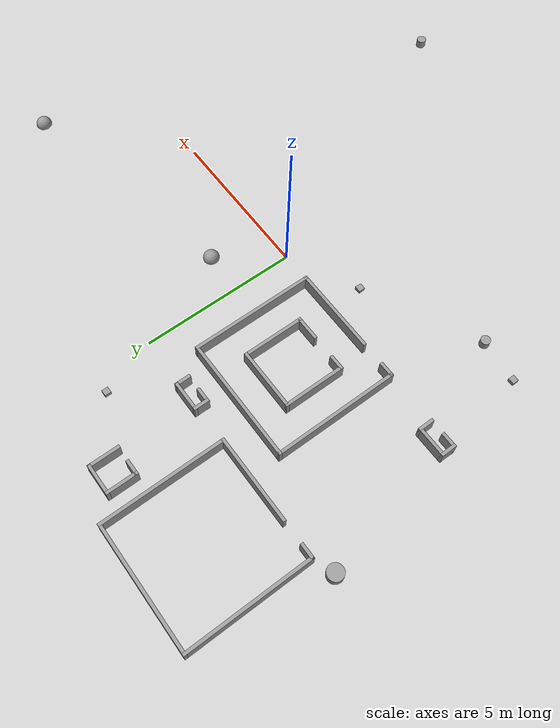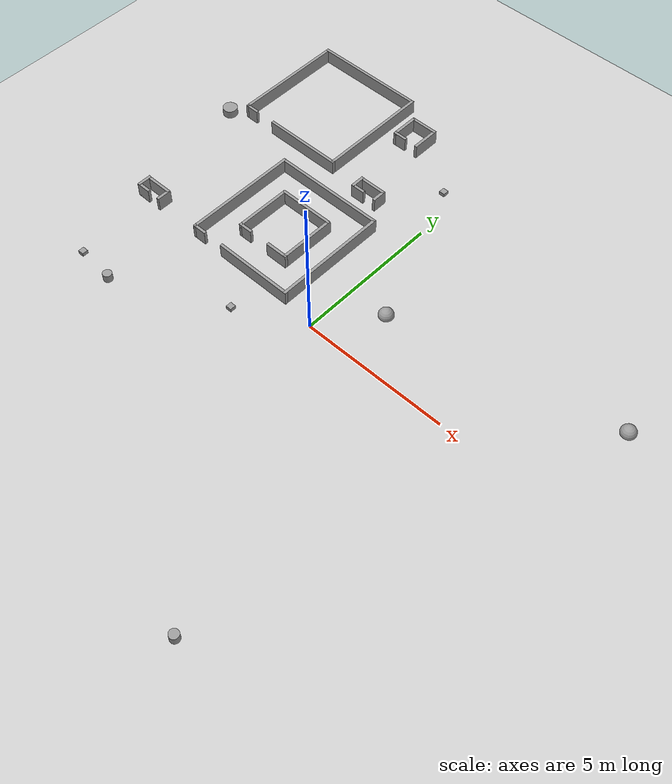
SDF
<sdf version="1.6">
 <world name="default">
  <model name="ground_plane">
   <static>1</static>
   <link name="link">
    <collision name="collision">
     <geometry><plane><normal>0 0 1</normal><size>20 20</size></plane></geometry>
     <surface>
      <contact><collide_bitmask>65535</collide_bitmask></contact>
      <friction><ode><mu>100</mu><mu2>50</mu2></ode></friction>
     </surface>
    </collision>
    <visual name="visual">
     <cast_shadows>0</cast_shadows>
     <geometry><plane><normal>0 0 1</normal><size>20 20</size></plane></geometry>
     <material>
      <script><uri>file://media/materials/scripts/gazebo.material</uri><name>Gazebo/Grey</name></script>
     </material>
    </visual>
   </link>
  </model>
  <model name="shape6">
   <pose>-3.1 2.1 0 0 -0 0</pose>
   <link name="Wall_27">
    <collision name="Wall_27_Collision">
     <geometry><box><size>4 0.1 0.5</size></box></geometry>
     <pose>0 0 0.25 0 -0 0</pose>
    </collision>
    <visual name="Wall_27_Visual">
     <pose>0 0 0.25 0 -0 0</pose>
     <geometry><box><size>4 0.1 0.5</size></box></geometry>
     <material>
      <script><uri>file://media/materials/scripts/gazebo.material</uri><name>Gazebo/Grey</name></script>
      <ambient>1 1 1 1</ambient>
     </material>
     <meta><layer>0</layer></meta>
    </visual>
    <pose>0 1.95 0 0 -0 0</pose>
   </link>
   <link name="Wall_28">
    <collision name="Wall_28_Collision">
     <geometry><box><size>4 0.1 0.5</size></box></geometry>
     <pose>0 0 0.25 0 -0 0</pose>
    </collision>
    <visual name="Wall_28_Visual">
     <pose>0 0 0.25 0 -0 0</pose>
     <geometry><box><size>4 0.1 0.5</size></box></geometry>
     <material>
      <script><uri>file://media/materials/scripts/gazebo.material</uri><name>Gazebo/Grey</name></script>
      <ambient>1 1 1 1</ambient>
     </material>
     <meta><layer>0</layer></meta>
    </visual>
    <pose>1.95 -0 0 0 -0 -1.5708</pose>
   </link>
   <link name="Wall_29">
    <collision name="Wall_29_Collision">
     <geometry><box><size>2.8 0.1 0.5</size></box></geometry>
     <pose>0 0 0.25 0 -0 0</pose>
    </collision>
    <visual name="Wall_29_Visual">
     <pose>0 0 0.25 0 -0 0</pose>
     <geometry><box><size>2.8 0.1 0.5</size></box></geometry>
     <material>
      <script><uri>file://media/materials/scripts/gazebo.material</uri><name>Gazebo/Grey</name></script>
      <ambient>1 1 1 1</ambient>
     </material>
     <meta><layer>0</layer></meta>
    </visual>
    <pose>0.6 -1.95 0 0 -0 3.14159</pose>
   </link>
   <link name="Wall_31">
    <collision name="Wall_31_Collision">
     <geometry><box><size>4 0.1 0.5</size></box></geometry>
     <pose>0 0 0.25 0 -0 0</pose>
    </collision>
    <visual name="Wall_31_Visual">
     <pose>0 0 0.25 0 -0 0</pose>
     <geometry><box><size>4 0.1 0.5</size></box></geometry>
     <material>
      <script><uri>file://media/materials/scripts/gazebo.material</uri><name>Gazebo/Grey</name></script>
      <ambient>1 1 1 1</ambient>
     </material>
     <meta><layer>0</layer></meta>
    </visual>
    <pose>-1.95 -0 0 0 -0 -1.5708</pose>
   </link>
   <link name="Wall_32">
    <collision name="Wall_32_Collision">
     <geometry><box><size>0.5 0.1 0.5</size></box></geometry>
     <pose>0 0 0.25 0 -0 0</pose>
    </collision>
    <visual name="Wall_32_Visual">
     <pose>0 0 0.25 0 -0 0</pose>
     <geometry><box><size>0.5 0.1 0.5</size></box></geometry>
     <material>
      <script><uri>file://media/materials/scripts/gazebo.material</uri><name>Gazebo/Grey</name></script>
      <ambient>1 1 1 1</ambient>
     </material>
     <meta><layer>0</layer></meta>
    </visual>
    <pose>-1.75 -1.95 0 0 -0 0</pose>
   </link>
   <static>1</static>
  </model>
  <model name="shape5">
   <pose>-3.1 2.1 0 0 -0 0</pose>
   <link name="Wall_20">
    <collision name="Wall_20_Collision">
     <geometry><box><size>2 0.1 0.5</size></box></geometry>
     <pose>0 0 0.25 0 -0 0</pose>
    </collision>
    <visual name="Wall_20_Visual">
     <pose>0 0 0.25 0 -0 0</pose>
     <geometry><box><size>2 0.1 0.5</size></box></geometry>
     <material>
      <script><uri>file://media/materials/scripts/gazebo.material</uri><name>Gazebo/Grey</name></script>
      <ambient>1 1 1 1</ambient>
     </material>
     <meta><layer>0</layer></meta>
    </visual>
    <pose>-0 0.95 0 0 -0 0</pose>
   </link>
   <link name="Wall_21">
    <collision name="Wall_21_Collision">
     <geometry><box><size>2 0.1 0.5</size></box></geometry>
     <pose>0 0 0.25 0 -0 0</pose>
    </collision>
    <visual name="Wall_21_Visual">
     <pose>0 0 0.25 0 -0 0</pose>
     <geometry><box><size>2 0.1 0.5</size></box></geometry>
     <material>
      <script><uri>file://media/materials/scripts/gazebo.material</uri><name>Gazebo/Grey</name></script>
      <ambient>1 1 1 1</ambient>
     </material>
     <meta><layer>0</layer></meta>
    </visual>
    <pose>0.95 0 0 0 -0 -1.5708</pose>
   </link>
   <link name="Wall_22">
    <collision name="Wall_22_Collision">
     <geometry><box><size>0.8 0.1 0.5</size></box></geometry>
     <pose>0 0 0.25 0 -0 0</pose>
    </collision>
    <visual name="Wall_22_Visual">
     <pose>0 0 0.25 0 -0 0</pose>
     <geometry><box><size>0.8 0.1 0.5</size></box></geometry>
     <material>
      <script><uri>file://media/materials/scripts/gazebo.material</uri><name>Gazebo/Grey</name></script>
      <ambient>1 1 1 1</ambient>
     </material>
     <meta><layer>0</layer></meta>
    </visual>
    <pose>0.6 -0.95 0 0 -0 3.14159</pose>
   </link>
   <link name="Wall_24">
    <collision name="Wall_24_Collision">
     <geometry><box><size>2 0.1 0.5</size></box></geometry>
     <pose>0 0 0.25 0 -0 0</pose>
    </collision>
    <visual name="Wall_24_Visual">
     <pose>0 0 0.25 0 -0 0</pose>
     <geometry><box><size>2 0.1 0.5</size></box></geometry>
     <material>
      <script><uri>file://media/materials/scripts/gazebo.material</uri><name>Gazebo/Grey</name></script>
      <ambient>1 1 1 1</ambient>
     </material>
     <meta><layer>0</layer></meta>
    </visual>
    <pose>-0.95 0 0 0 -0 -1.5708</pose>
   </link>
   <link name="Wall_25">
    <collision name="Wall_25_Collision">
     <geometry><box><size>0.5 0.1 0.5</size></box></geometry>
     <pose>0 0 0.25 0 -0 0</pose>
    </collision>
    <visual name="Wall_25_Visual">
     <pose>0 0 0.25 0 -0 0</pose>
     <geometry><box><size>0.5 0.1 0.5</size></box></geometry>
     <material>
      <script><uri>file://media/materials/scripts/gazebo.material</uri><name>Gazebo/Grey</name></script>
      <ambient>1 1 1 1</ambient>
     </material>
     <meta><layer>0</layer></meta>
    </visual>
    <pose>-0.75 -0.95 0 0 -0 0</pose>
   </link>
   <static>1</static>
  </model>
  <model name="shape0">
   <pose>-2.2 4.95 0 0 -0 0</pose>
   <link name="Wall_0">
    <pose>0 0.2 0 0 -0 0</pose>
    <inertial>
     <mass>1</mass>
     <inertia><ixx>1</ixx><ixy>0</ixy><ixz>0</ixz><iyy>1</iyy><iyz>0</iyz><izz>1</izz></inertia>
    </inertial>
    <visual name="Wall_0_Visual">
     <pose>0 0 0.25 0 -0 0</pose>
     <geometry><box><size>1 0.1 0.5</size></box></geometry>
     <material>
      <script><uri>file://media/materials/scripts/gazebo.material</uri><name>Gazebo/Grey</name></script>
      <ambient>1 1 1 1</ambient>
      <shader type="vertex"><normal_map>__default__</normal_map></shader>
      <diffuse>0.7 0.7 0.7 1</diffuse>
      <specular>0.01 0.01 0.01 1</specular>
      <emissive>0 0 0 1</emissive>
     </material>
     <meta><layer>0</layer></meta>
    </visual>
    <collision name="Wall_0_Collision">
     <pose>0 0 0.25 0 -0 0</pose>
     <geometry><box><size>1 0.1 0.5</size></box></geometry>
     <surface>
      <friction>
       <ode><mu>1</mu><mu2>1</mu2><fdir1>0 0 0</fdir1><slip1>0</slip1><slip2>0</slip2></ode>
       <torsional>
        <coefficient>1</coefficient>
        <patch_radius>0</patch_radius>
        <surface_radius>0</surface_radius>
        <use_patch_radius>1</use_patch_radius>
        <ode><slip>0</slip></ode>
       </torsional>
      </friction>
      <bounce><restitution_coefficient>0</restitution_coefficient><threshold>1e+06</threshold></bounce>
      <contact>
       <collide_without_contact>0</collide_without_contact>
       <collide_without_contact_bitmask>1</collide_without_contact_bitmask>
       <collide_bitmask>1</collide_bitmask>
       <ode>
        <soft_cfm>0</soft_cfm>
        <soft_erp>0.2</soft_erp>
        <kp>1e+13</kp>
        <kd>1</kd>
        <max_vel>0.01</max_vel>
        <min_depth>0</min_depth>
       </ode>
       <bullet>
        <split_impulse>1</split_impulse>
        <split_impulse_penetration_threshold>-0.01</split_impulse_penetration_threshold>
        <soft_cfm>0</soft_cfm>
        <soft_erp>0.2</soft_erp>
        <kp>1e+13</kp>
        <kd>1</kd>
       </bullet>
      </contact>
     </surface>
    </collision>
   </link>
   <link name="Wall_2">
    <pose>-0.45 0 0.01 0 0 -1.5708</pose>
    <inertial>
     <mass>1</mass>
     <inertia><ixx>1</ixx><ixy>0</ixy><ixz>0</ixz><iyy>1</iyy><iyz>0</iyz><izz>1</izz></inertia>
    </inertial>
    <visual name="Wall_2_Visual">
     <pose>0 0 0.25 0 -0 0</pose>
     <geometry><box><size>0.5 0.1 0.5</size></box></geometry>
     <material>
      <script><uri>file://media/materials/scripts/gazebo.material</uri><name>Gazebo/Grey</name></script>
      <ambient>1 1 1 1</ambient>
      <shader type="vertex"><normal_map>__default__</normal_map></shader>
      <diffuse>0.7 0.7 0.7 1</diffuse>
      <specular>0.01 0.01 0.01 1</specular>
      <emissive>0 0 0 1</emissive>
     </material>
     <meta><layer>0</layer></meta>
    </visual>
    <collision name="Wall_2_Collision">
     <pose>0 0 0.25 0 -0 0</pose>
     <geometry><box><size>0.5 0.1 0.5</size></box></geometry>
     <surface>
      <friction>
       <ode><mu>1</mu><mu2>1</mu2><fdir1>0 0 0</fdir1><slip1>0</slip1><slip2>0</slip2></ode>
       <torsional>
        <coefficient>1</coefficient>
        <patch_radius>0</patch_radius>
        <surface_radius>0</surface_radius>
        <use_patch_radius>1</use_patch_radius>
        <ode><slip>0</slip></ode>
       </torsional>
      </friction>
      <bounce><restitution_coefficient>0</restitution_coefficient><threshold>1e+06</threshold></bounce>
      <contact>
       <collide_without_contact>0</collide_without_contact>
       <collide_without_contact_bitmask>1</collide_without_contact_bitmask>
       <collide_bitmask>1</collide_bitmask>
       <ode>
        <soft_cfm>0</soft_cfm>
        <soft_erp>0.2</soft_erp>
        <kp>1e+13</kp>
        <kd>1</kd>
        <max_vel>0.01</max_vel>
        <min_depth>0</min_depth>
       </ode>
       <bullet>
        <split_impulse>1</split_impulse>
        <split_impulse_penetration_threshold>-0.01</split_impulse_penetration_threshold>
        <soft_cfm>0</soft_cfm>
        <soft_erp>0.2</soft_erp>
        <kp>1e+13</kp>
        <kd>1</kd>
       </bullet>
      </contact>
     </surface>
    </collision>
   </link>
   <link name="Wall_4">
    <pose>0.45 0 0 0 0 -1.5708</pose>
    <inertial>
     <mass>1</mass>
     <inertia><ixx>1</ixx><ixy>0</ixy><ixz>0</ixz><iyy>1</iyy><iyz>0</iyz><izz>1</izz></inertia>
    </inertial>
    <visual name="Wall_4_Visual">
     <pose>0 0 0.25 0 -0 0</pose>
     <geometry><box><size>0.5 0.1 0.5</size></box></geometry>
     <material>
      <script><uri>file://media/materials/scripts/gazebo.material</uri><name>Gazebo/Grey</name></script>
      <ambient>1 1 1 1</ambient>
      <shader type="vertex"><normal_map>__default__</normal_map></shader>
      <diffuse>0.7 0.7 0.7 1</diffuse>
      <specular>0.01 0.01 0.01 1</specular>
      <emissive>0 0 0 1</emissive>
     </material>
     <meta><layer>0</layer></meta>
    </visual>
    <collision name="Wall_4_Collision">
     <pose>0 0 0.25 0 -0 0</pose>
     <geometry><box><size>0.5 0.1 0.5</size></box></geometry>
     <surface>
      <friction>
       <ode><mu>1</mu><mu2>1</mu2><fdir1>0 0 0</fdir1><slip1>0</slip1><slip2>0</slip2></ode>
       <torsional>
        <coefficient>1</coefficient>
        <patch_radius>0</patch_radius>
        <surface_radius>0</surface_radius>
        <use_patch_radius>1</use_patch_radius>
        <ode><slip>0</slip></ode>
       </torsional>
      </friction>
      <bounce><restitution_coefficient>0</restitution_coefficient><threshold>1e+06</threshold></bounce>
      <contact>
       <collide_without_contact>0</collide_without_contact>
       <collide_without_contact_bitmask>1</collide_without_contact_bitmask>
       <collide_bitmask>1</collide_bitmask>
       <ode>
        <soft_cfm>0</soft_cfm>
        <soft_erp>0.2</soft_erp>
        <kp>1e+13</kp>
        <kd>1</kd>
        <max_vel>0.01</max_vel>
        <min_depth>0</min_depth>
       </ode>
       <bullet>
        <split_impulse>1</split_impulse>
        <split_impulse_penetration_threshold>-0.01</split_impulse_penetration_threshold>
        <soft_cfm>0</soft_cfm>
        <soft_erp>0.2</soft_erp>
        <kp>1e+13</kp>
        <kd>1</kd>
       </bullet>
      </contact>
     </surface>
    </collision>
   </link>
   <link name="Wall_7">
    <pose>-0.25 -0.2 0 0 -0 0</pose>
    <inertial>
     <mass>1</mass>
     <inertia><ixx>1</ixx><ixy>0</ixy><ixz>0</ixz><iyy>1</iyy><iyz>0</iyz><izz>1</izz></inertia>
    </inertial>
    <visual name="Wall_7_Visual">
     <pose>0 0 0.25 0 -0 0</pose>
     <geometry><box><size>0.5 0.1 0.5</size></box></geometry>
     <material>
      <script><uri>file://media/materials/scripts/gazebo.material</uri><name>Gazebo/Grey</name></script>
      <ambient>1 1 1 1</ambient>
      <shader type="vertex"><normal_map>__default__</normal_map></shader>
      <diffuse>0.7 0.7 0.7 1</diffuse>
      <specular>0.01 0.01 0.01 1</specular>
      <emissive>0 0 0 1</emissive>
     </material>
     <meta><layer>0</layer></meta>
    </visual>
    <collision name="Wall_7_Collision">
     <pose>0 0 0.25 0 -0 0</pose>
     <geometry><box><size>0.5 0.1 0.5</size></box></geometry>
     <surface>
      <friction>
       <ode><mu>1</mu><mu2>1</mu2><fdir1>0 0 0</fdir1><slip1>0</slip1><slip2>0</slip2></ode>
       <torsional>
        <coefficient>1</coefficient>
        <patch_radius>0</patch_radius>
        <surface_radius>0</surface_radius>
        <use_patch_radius>1</use_patch_radius>
        <ode><slip>0</slip></ode>
       </torsional>
      </friction>
      <bounce><restitution_coefficient>0</restitution_coefficient><threshold>1e+06</threshold></bounce>
      <contact>
       <collide_without_contact>0</collide_without_contact>
       <collide_without_contact_bitmask>1</collide_without_contact_bitmask>
       <collide_bitmask>1</collide_bitmask>
       <ode>
        <soft_cfm>0</soft_cfm>
        <soft_erp>0.2</soft_erp>
        <kp>1e+13</kp>
        <kd>1</kd>
        <max_vel>0.01</max_vel>
        <min_depth>0</min_depth>
       </ode>
       <bullet>
        <split_impulse>1</split_impulse>
        <split_impulse_penetration_threshold>-0.01</split_impulse_penetration_threshold>
        <soft_cfm>0</soft_cfm>
        <soft_erp>0.2</soft_erp>
        <kp>1e+13</kp>
        <kd>1</kd>
       </bullet>
      </contact>
     </surface>
    </collision>
   </link>
   <static>1</static>
  </model>
  <model name="shape6">
   <pose>-5.8 7 0 0 -0 0</pose>
   <link name="Wall_27">
    <collision name="Wall_27_Collision">
     <geometry><box><size>4 0.1 0.5</size></box></geometry>
     <pose>0 0 0.25 0 -0 0</pose>
    </collision>
    <visual name="Wall_27_Visual">
     <pose>0 0 0.25 0 -0 0</pose>
     <geometry><box><size>4 0.1 0.5</size></box></geometry>
     <material>
      <script><uri>file://media/materials/scripts/gazebo.material</uri><name>Gazebo/Grey</name></script>
      <ambient>1 1 1 1</ambient>
     </material>
     <meta><layer>0</layer></meta>
    </visual>
    <pose>0 1.95 0 0 -0 0</pose>
   </link>
   <link name="Wall_28">
    <collision name="Wall_28_Collision">
     <geometry><box><size>4 0.1 0.5</size></box></geometry>
     <pose>0 0 0.25 0 -0 0</pose>
    </collision>
    <visual name="Wall_28_Visual">
     <pose>0 0 0.25 0 -0 0</pose>
     <geometry><box><size>4 0.1 0.5</size></box></geometry>
     <material>
      <script><uri>file://media/materials/scripts/gazebo.material</uri><name>Gazebo/Grey</name></script>
      <ambient>1 1 1 1</ambient>
     </material>
     <meta><layer>0</layer></meta>
    </visual>
    <pose>1.95 -0 0 0 -0 -1.5708</pose>
   </link>
   <link name="Wall_29">
    <collision name="Wall_29_Collision">
     <geometry><box><size>2.8 0.1 0.5</size></box></geometry>
     <pose>0 0 0.25 0 -0 0</pose>
    </collision>
    <visual name="Wall_29_Visual">
     <pose>0 0 0.25 0 -0 0</pose>
     <geometry><box><size>2.8 0.1 0.5</size></box></geometry>
     <material>
      <script><uri>file://media/materials/scripts/gazebo.material</uri><name>Gazebo/Grey</name></script>
      <ambient>1 1 1 1</ambient>
     </material>
     <meta><layer>0</layer></meta>
    </visual>
    <pose>0.6 -1.95 0 0 -0 3.14159</pose>
   </link>
   <link name="Wall_31">
    <collision name="Wall_31_Collision">
     <geometry><box><size>4 0.1 0.5</size></box></geometry>
     <pose>0 0 0.25 0 -0 0</pose>
    </collision>
    <visual name="Wall_31_Visual">
     <pose>0 0 0.25 0 -0 0</pose>
     <geometry><box><size>4 0.1 0.5</size></box></geometry>
     <material>
      <script><uri>file://media/materials/scripts/gazebo.material</uri><name>Gazebo/Grey</name></script>
      <ambient>1 1 1 1</ambient>
     </material>
     <meta><layer>0</layer></meta>
    </visual>
    <pose>-1.95 -0 0 0 -0 -1.5708</pose>
   </link>
   <link name="Wall_32">
    <collision name="Wall_32_Collision">
     <geometry><box><size>0.5 0.1 0.5</size></box></geometry>
     <pose>0 0 0.25 0 -0 0</pose>
    </collision>
    <visual name="Wall_32_Visual">
     <pose>0 0 0.25 0 -0 0</pose>
     <geometry><box><size>0.5 0.1 0.5</size></box></geometry>
     <material>
      <script><uri>file://media/materials/scripts/gazebo.material</uri><name>Gazebo/Grey</name></script>
      <ambient>1 1 1 1</ambient>
     </material>
     <meta><layer>0</layer></meta>
    </visual>
    <pose>-1.75 -1.95 0 0 -0 0</pose>
   </link>
   <static>1</static>
  </model>
  <model name="shape0">
   <pose>-7.2 0.35 0 0 -0 0</pose>
   <link name="Wall_0">
    <pose>0 0.2 0 0 -0 0</pose>
    <inertial>
     <mass>1</mass>
     <inertia><ixx>1</ixx><ixy>0</ixy><ixz>0</ixz><iyy>1</iyy><iyz>0</iyz><izz>1</izz></inertia>
    </inertial>
    <visual name="Wall_0_Visual">
     <pose>0 0 0.25 0 -0 0</pose>
     <geometry><box><size>1 0.1 0.5</size></box></geometry>
     <material>
      <script><uri>file://media/materials/scripts/gazebo.material</uri><name>Gazebo/Grey</name></script>
      <ambient>1 1 1 1</ambient>
      <shader type="vertex"><normal_map>__default__</normal_map></shader>
      <diffuse>0.7 0.7 0.7 1</diffuse>
      <specular>0.01 0.01 0.01 1</specular>
      <emissive>0 0 0 1</emissive>
     </material>
     <meta><layer>0</layer></meta>
    </visual>
    <collision name="Wall_0_Collision">
     <pose>0 0 0.25 0 -0 0</pose>
     <geometry><box><size>1 0.1 0.5</size></box></geometry>
     <surface>
      <friction>
       <ode><mu>1</mu><mu2>1</mu2><fdir1>0 0 0</fdir1><slip1>0</slip1><slip2>0</slip2></ode>
       <torsional>
        <coefficient>1</coefficient>
        <patch_radius>0</patch_radius>
        <surface_radius>0</surface_radius>
        <use_patch_radius>1</use_patch_radius>
        <ode><slip>0</slip></ode>
       </torsional>
      </friction>
      <bounce><restitution_coefficient>0</restitution_coefficient><threshold>1e+06</threshold></bounce>
      <contact>
       <collide_without_contact>0</collide_without_contact>
       <collide_without_contact_bitmask>1</collide_without_contact_bitmask>
       <collide_bitmask>1</collide_bitmask>
       <ode>
        <soft_cfm>0</soft_cfm>
        <soft_erp>0.2</soft_erp>
        <kp>1e+13</kp>
        <kd>1</kd>
        <max_vel>0.01</max_vel>
        <min_depth>0</min_depth>
       </ode>
       <bullet>
        <split_impulse>1</split_impulse>
        <split_impulse_penetration_threshold>-0.01</split_impulse_penetration_threshold>
        <soft_cfm>0</soft_cfm>
        <soft_erp>0.2</soft_erp>
        <kp>1e+13</kp>
        <kd>1</kd>
       </bullet>
      </contact>
     </surface>
    </collision>
   </link>
   <link name="Wall_2">
    <pose>-0.45 0 0.01 0 0 -1.5708</pose>
    <inertial>
     <mass>1</mass>
     <inertia><ixx>1</ixx><ixy>0</ixy><ixz>0</ixz><iyy>1</iyy><iyz>0</iyz><izz>1</izz></inertia>
    </inertial>
    <visual name="Wall_2_Visual">
     <pose>0 0 0.25 0 -0 0</pose>
     <geometry><box><size>0.5 0.1 0.5</size></box></geometry>
     <material>
      <script><uri>file://media/materials/scripts/gazebo.material</uri><name>Gazebo/Grey</name></script>
      <ambient>1 1 1 1</ambient>
      <shader type="vertex"><normal_map>__default__</normal_map></shader>
      <diffuse>0.7 0.7 0.7 1</diffuse>
      <specular>0.01 0.01 0.01 1</specular>
      <emissive>0 0 0 1</emissive>
     </material>
     <meta><layer>0</layer></meta>
    </visual>
    <collision name="Wall_2_Collision">
     <pose>0 0 0.25 0 -0 0</pose>
     <geometry><box><size>0.5 0.1 0.5</size></box></geometry>
     <surface>
      <friction>
       <ode><mu>1</mu><mu2>1</mu2><fdir1>0 0 0</fdir1><slip1>0</slip1><slip2>0</slip2></ode>
       <torsional>
        <coefficient>1</coefficient>
        <patch_radius>0</patch_radius>
        <surface_radius>0</surface_radius>
        <use_patch_radius>1</use_patch_radius>
        <ode><slip>0</slip></ode>
       </torsional>
      </friction>
      <bounce><restitution_coefficient>0</restitution_coefficient><threshold>1e+06</threshold></bounce>
      <contact>
       <collide_without_contact>0</collide_without_contact>
       <collide_without_contact_bitmask>1</collide_without_contact_bitmask>
       <collide_bitmask>1</collide_bitmask>
       <ode>
        <soft_cfm>0</soft_cfm>
        <soft_erp>0.2</soft_erp>
        <kp>1e+13</kp>
        <kd>1</kd>
        <max_vel>0.01</max_vel>
        <min_depth>0</min_depth>
       </ode>
       <bullet>
        <split_impulse>1</split_impulse>
        <split_impulse_penetration_threshold>-0.01</split_impulse_penetration_threshold>
        <soft_cfm>0</soft_cfm>
        <soft_erp>0.2</soft_erp>
        <kp>1e+13</kp>
        <kd>1</kd>
       </bullet>
      </contact>
     </surface>
    </collision>
   </link>
   <link name="Wall_4">
    <pose>0.45 0 0 0 0 -1.5708</pose>
    <inertial>
     <mass>1</mass>
     <inertia><ixx>1</ixx><ixy>0</ixy><ixz>0</ixz><iyy>1</iyy><iyz>0</iyz><izz>1</izz></inertia>
    </inertial>
    <visual name="Wall_4_Visual">
     <pose>0 0 0.25 0 -0 0</pose>
     <geometry><box><size>0.5 0.1 0.5</size></box></geometry>
     <material>
      <script><uri>file://media/materials/scripts/gazebo.material</uri><name>Gazebo/Grey</name></script>
      <ambient>1 1 1 1</ambient>
      <shader type="vertex"><normal_map>__default__</normal_map></shader>
      <diffuse>0.7 0.7 0.7 1</diffuse>
      <specular>0.01 0.01 0.01 1</specular>
      <emissive>0 0 0 1</emissive>
     </material>
     <meta><layer>0</layer></meta>
    </visual>
    <collision name="Wall_4_Collision">
     <pose>0 0 0.25 0 -0 0</pose>
     <geometry><box><size>0.5 0.1 0.5</size></box></geometry>
     <surface>
      <friction>
       <ode><mu>1</mu><mu2>1</mu2><fdir1>0 0 0</fdir1><slip1>0</slip1><slip2>0</slip2></ode>
       <torsional>
        <coefficient>1</coefficient>
        <patch_radius>0</patch_radius>
        <surface_radius>0</surface_radius>
        <use_patch_radius>1</use_patch_radius>
        <ode><slip>0</slip></ode>
       </torsional>
      </friction>
      <bounce><restitution_coefficient>0</restitution_coefficient><threshold>1e+06</threshold></bounce>
      <contact>
       <collide_without_contact>0</collide_without_contact>
       <collide_without_contact_bitmask>1</collide_without_contact_bitmask>
       <collide_bitmask>1</collide_bitmask>
       <ode>
        <soft_cfm>0</soft_cfm>
        <soft_erp>0.2</soft_erp>
        <kp>1e+13</kp>
        <kd>1</kd>
        <max_vel>0.01</max_vel>
        <min_depth>0</min_depth>
       </ode>
       <bullet>
        <split_impulse>1</split_impulse>
        <split_impulse_penetration_threshold>-0.01</split_impulse_penetration_threshold>
        <soft_cfm>0</soft_cfm>
        <soft_erp>0.2</soft_erp>
        <kp>1e+13</kp>
        <kd>1</kd>
       </bullet>
      </contact>
     </surface>
    </collision>
   </link>
   <link name="Wall_7">
    <pose>-0.25 -0.2 0 0 -0 0</pose>
    <inertial>
     <mass>1</mass>
     <inertia><ixx>1</ixx><ixy>0</ixy><ixz>0</ixz><iyy>1</iyy><iyz>0</iyz><izz>1</izz></inertia>
    </inertial>
    <visual name="Wall_7_Visual">
     <pose>0 0 0.25 0 -0 0</pose>
     <geometry><box><size>0.5 0.1 0.5</size></box></geometry>
     <material>
      <script><uri>file://media/materials/scripts/gazebo.material</uri><name>Gazebo/Grey</name></script>
      <ambient>1 1 1 1</ambient>
      <shader type="vertex"><normal_map>__default__</normal_map></shader>
      <diffuse>0.7 0.7 0.7 1</diffuse>
      <specular>0.01 0.01 0.01 1</specular>
      <emissive>0 0 0 1</emissive>
     </material>
     <meta><layer>0</layer></meta>
    </visual>
    <collision name="Wall_7_Collision">
     <pose>0 0 0.25 0 -0 0</pose>
     <geometry><box><size>0.5 0.1 0.5</size></box></geometry>
     <surface>
      <friction>
       <ode><mu>1</mu><mu2>1</mu2><fdir1>0 0 0</fdir1><slip1>0</slip1><slip2>0</slip2></ode>
       <torsional>
        <coefficient>1</coefficient>
        <patch_radius>0</patch_radius>
        <surface_radius>0</surface_radius>
        <use_patch_radius>1</use_patch_radius>
        <ode><slip>0</slip></ode>
       </torsional>
      </friction>
      <bounce><restitution_coefficient>0</restitution_coefficient><threshold>1e+06</threshold></bounce>
      <contact>
       <collide_without_contact>0</collide_without_contact>
       <collide_without_contact_bitmask>1</collide_without_contact_bitmask>
       <collide_bitmask>1</collide_bitmask>
       <ode>
        <soft_cfm>0</soft_cfm>
        <soft_erp>0.2</soft_erp>
        <kp>1e+13</kp>
        <kd>1</kd>
        <max_vel>0.01</max_vel>
        <min_depth>0</min_depth>
       </ode>
       <bullet>
        <split_impulse>1</split_impulse>
        <split_impulse_penetration_threshold>-0.01</split_impulse_penetration_threshold>
        <soft_cfm>0</soft_cfm>
        <soft_erp>0.2</soft_erp>
        <kp>1e+13</kp>
        <kd>1</kd>
       </bullet>
      </contact>
     </surface>
    </collision>
   </link>
   <static>1</static>
  </model>
  <model name="cylinder_d=30">
   <link name="link_0">
    <inertial>
     <mass>1</mass>
     <inertia><ixx>0.145833</ixx><ixy>0</ixy><ixz>0</ixz><iyy>0.145833</iyy><iyz>0</iyz><izz>0.125</izz></inertia>
    </inertial>
    <pose>4.25 -9.15 0 0 -0 0</pose>
    <visual name="visual">
     <geometry><cylinder><radius>0.15</radius><length>0.5</length></cylinder></geometry>
     <material>
      <lighting>1</lighting>
      <script><uri>file://media/materials/scripts/gazebo.material</uri><name>Gazebo/Grey</name></script>
      <shader type="vertex"><normal_map>__default__</normal_map></shader>
      <ambient>0.3 0.3 0.3 1</ambient>
      <diffuse>0.7 0.7 0.7 1</diffuse>
      <specular>0.01 0.01 0.01 1</specular>
      <emissive>0 0 0 1</emissive>
     </material>
    </visual>
    <collision name="collision">
     <geometry><cylinder><radius>0.15</radius><length>0.5</length></cylinder></geometry>
     <surface>
      <friction>
       <ode><mu>1</mu><mu2>1</mu2><fdir1>0 0 0</fdir1><slip1>0</slip1><slip2>0</slip2></ode>
       <torsional>
        <coefficient>1</coefficient>
        <patch_radius>0</patch_radius>
        <surface_radius>0</surface_radius>
        <use_patch_radius>1</use_patch_radius>
        <ode><slip>0</slip></ode>
       </torsional>
      </friction>
      <bounce><restitution_coefficient>0</restitution_coefficient><threshold>1e+06</threshold></bounce>
      <contact>
       <collide_without_contact>0</collide_without_contact>
       <collide_without_contact_bitmask>1</collide_without_contact_bitmask>
       <collide_bitmask>1</collide_bitmask>
       <ode>
        <soft_cfm>0</soft_cfm>
        <soft_erp>0.2</soft_erp>
        <kp>1e+13</kp>
        <kd>1</kd>
        <max_vel>0.01</max_vel>
        <min_depth>0</min_depth>
       </ode>
       <bullet>
        <split_impulse>1</split_impulse>
        <split_impulse_penetration_threshold>-0.01</split_impulse_penetration_threshold>
        <soft_cfm>0</soft_cfm>
        <soft_erp>0.2</soft_erp>
        <kp>1e+13</kp>
        <kd>1</kd>
       </bullet>
      </contact>
     </surface>
    </collision>
   </link>
   <static>0</static>
  </model>
  <model name="box_d=20">
   <link name="link_2">
    <inertial>
     <mass>1</mass>
     <inertia>
      <ixx>0.166667</ixx>
      <ixy>0</ixy>
      <ixz>0</ixz>
      <iyy>0.166667</iyy>
      <iyz>0</iyz>
      <izz>0.166667</izz>
     </inertia>
    </inertial>
    <pose>-0.6 6.8 0 0 -0 0</pose>
    <visual name="visual">
     <geometry><box><size>0.2 0.2 0.2</size></box></geometry>
     <material>
      <lighting>1</lighting>
      <script><uri>file://media/materials/scripts/gazebo.material</uri><name>Gazebo/Grey</name></script>
      <shader type="vertex"><normal_map>__default__</normal_map></shader>
      <ambient>0.3 0.3 0.3 1</ambient>
      <diffuse>0.7 0.7 0.7 1</diffuse>
      <specular>0.01 0.01 0.01 1</specular>
      <emissive>0 0 0 1</emissive>
     </material>
    </visual>
    <collision name="collision">
     <geometry><box><size>0.2 0.2 0.2</size></box></geometry>
     <surface>
      <friction>
       <ode><mu>1</mu><mu2>1</mu2><fdir1>0 0 0</fdir1><slip1>0</slip1><slip2>0</slip2></ode>
       <torsional>
        <coefficient>1</coefficient>
        <patch_radius>0</patch_radius>
        <surface_radius>0</surface_radius>
        <use_patch_radius>1</use_patch_radius>
        <ode><slip>0</slip></ode>
       </torsional>
      </friction>
      <bounce><restitution_coefficient>0</restitution_coefficient><threshold>1e+06</threshold></bounce>
      <contact>
       <collide_without_contact>0</collide_without_contact>
       <collide_without_contact_bitmask>1</collide_without_contact_bitmask>
       <collide_bitmask>1</collide_bitmask>
       <ode>
        <soft_cfm>0</soft_cfm>
        <soft_erp>0.2</soft_erp>
        <kp>1e+13</kp>
        <kd>1</kd>
        <max_vel>0.01</max_vel>
        <min_depth>0</min_depth>
       </ode>
       <bullet>
        <split_impulse>1</split_impulse>
        <split_impulse_penetration_threshold>-0.01</split_impulse_penetration_threshold>
        <soft_cfm>0</soft_cfm>
        <soft_erp>0.2</soft_erp>
        <kp>1e+13</kp>
        <kd>1</kd>
       </bullet>
      </contact>
     </surface>
    </collision>
   </link>
   <static>0</static>
  </model>
  <model name="box_d=20">
   <link name="link_2">
    <inertial>
     <mass>1</mass>
     <inertia>
      <ixx>0.166667</ixx>
      <ixy>0</ixy>
      <ixz>0</ixz>
      <iyy>0.166667</iyy>
      <iyz>0</iyz>
      <izz>0.166667</izz>
     </inertia>
    </inertial>
    <pose>-2.2 -1.1 0 0 -0 0</pose>
    <visual name="visual">
     <geometry><box><size>0.2 0.2 0.2</size></box></geometry>
     <material>
      <lighting>1</lighting>
      <script><uri>file://media/materials/scripts/gazebo.material</uri><name>Gazebo/Grey</name></script>
      <shader type="vertex"><normal_map>__default__</normal_map></shader>
      <ambient>0.3 0.3 0.3 1</ambient>
      <diffuse>0.7 0.7 0.7 1</diffuse>
      <specular>0.01 0.01 0.01 1</specular>
      <emissive>0 0 0 1</emissive>
     </material>
    </visual>
    <collision name="collision">
     <geometry><box><size>0.2 0.2 0.2</size></box></geometry>
     <surface>
      <friction>
       <ode><mu>1</mu><mu2>1</mu2><fdir1>0 0 0</fdir1><slip1>0</slip1><slip2>0</slip2></ode>
       <torsional>
        <coefficient>1</coefficient>
        <patch_radius>0</patch_radius>
        <surface_radius>0</surface_radius>
        <use_patch_radius>1</use_patch_radius>
        <ode><slip>0</slip></ode>
       </torsional>
      </friction>
      <bounce><restitution_coefficient>0</restitution_coefficient><threshold>1e+06</threshold></bounce>
      <contact>
       <collide_without_contact>0</collide_without_contact>
       <collide_without_contact_bitmask>1</collide_without_contact_bitmask>
       <collide_bitmask>1</collide_bitmask>
       <ode>
        <soft_cfm>0</soft_cfm>
        <soft_erp>0.2</soft_erp>
        <kp>1e+13</kp>
        <kd>1</kd>
        <max_vel>0.01</max_vel>
        <min_depth>0</min_depth>
       </ode>
       <bullet>
        <split_impulse>1</split_impulse>
        <split_impulse_penetration_threshold>-0.01</split_impulse_penetration_threshold>
        <soft_cfm>0</soft_cfm>
        <soft_erp>0.2</soft_erp>
        <kp>1e+13</kp>
        <kd>1</kd>
       </bullet>
      </contact>
     </surface>
    </collision>
   </link>
   <static>0</static>
  </model>
  <model name="cylinder_d=30">
   <link name="link_0">
    <inertial>
     <mass>1</mass>
     <inertia><ixx>0.145833</ixx><ixy>0</ixy><ixz>0</ixz><iyy>0.145833</iyy><iyz>0</iyz><izz>0.125</izz></inertia>
    </inertial>
    <pose>-5.75 -2.85 0 0 -0 0</pose>
    <visual name="visual">
     <geometry><cylinder><radius>0.15</radius><length>0.5</length></cylinder></geometry>
     <material>
      <lighting>1</lighting>
      <script><uri>file://media/materials/scripts/gazebo.material</uri><name>Gazebo/Grey</name></script>
      <shader type="vertex"><normal_map>__default__</normal_map></shader>
      <ambient>0.3 0.3 0.3 1</ambient>
      <diffuse>0.7 0.7 0.7 1</diffuse>
      <specular>0.01 0.01 0.01 1</specular>
      <emissive>0 0 0 1</emissive>
     </material>
    </visual>
    <collision name="collision">
     <geometry><cylinder><radius>0.15</radius><length>0.5</length></cylinder></geometry>
     <surface>
      <friction>
       <ode><mu>1</mu><mu2>1</mu2><fdir1>0 0 0</fdir1><slip1>0</slip1><slip2>0</slip2></ode>
       <torsional>
        <coefficient>1</coefficient>
        <patch_radius>0</patch_radius>
        <surface_radius>0</surface_radius>
        <use_patch_radius>1</use_patch_radius>
        <ode><slip>0</slip></ode>
       </torsional>
      </friction>
      <bounce><restitution_coefficient>0</restitution_coefficient><threshold>1e+06</threshold></bounce>
      <contact>
       <collide_without_contact>0</collide_without_contact>
       <collide_without_contact_bitmask>1</collide_without_contact_bitmask>
       <collide_bitmask>1</collide_bitmask>
       <ode>
        <soft_cfm>0</soft_cfm>
        <soft_erp>0.2</soft_erp>
        <kp>1e+13</kp>
        <kd>1</kd>
        <max_vel>0.01</max_vel>
        <min_depth>0</min_depth>
       </ode>
       <bullet>
        <split_impulse>1</split_impulse>
        <split_impulse_penetration_threshold>-0.01</split_impulse_penetration_threshold>
        <soft_cfm>0</soft_cfm>
        <soft_erp>0.2</soft_erp>
        <kp>1e+13</kp>
        <kd>1</kd>
       </bullet>
      </contact>
     </surface>
    </collision>
   </link>
   <static>0</static>
  </model>
  <model name="ball_d=50">
   <link name="link_1">
    <inertial>
     <mass>1</mass>
     <inertia><ixx>0.1</ixx><ixy>0</ixy><ixz>0</ixz><iyy>0.1</iyy><iyz>0</iyz><izz>0.1</izz></inertia>
    </inertial>
    <pose>8.95 3.35 0 0 -0 0</pose>
    <visual name="visual">
     <geometry><sphere><radius>0.25</radius></sphere></geometry>
     <material>
      <lighting>1</lighting>
      <script><uri>file://media/materials/scripts/gazebo.material</uri><name>Gazebo/Grey</name></script>
      <shader type="vertex"><normal_map>__default__</normal_map></shader>
      <ambient>0.3 0.3 0.3 1</ambient>
      <diffuse>0.7 0.7 0.7 1</diffuse>
      <specular>0.01 0.01 0.01 1</specular>
      <emissive>0 0 0 1</emissive>
     </material>
    </visual>
    <collision name="collision">
     <geometry><sphere><radius>0.25</radius></sphere></geometry>
     <surface>
      <friction>
       <ode><mu>1</mu><mu2>1</mu2><fdir1>0 0 0</fdir1><slip1>0</slip1><slip2>0</slip2></ode>
       <torsional>
        <coefficient>1</coefficient>
        <patch_radius>0</patch_radius>
        <surface_radius>0</surface_radius>
        <use_patch_radius>1</use_patch_radius>
        <ode><slip>0</slip></ode>
       </torsional>
      </friction>
      <bounce><restitution_coefficient>0</restitution_coefficient><threshold>1e+06</threshold></bounce>
      <contact>
       <collide_without_contact>0</collide_without_contact>
       <collide_without_contact_bitmask>1</collide_without_contact_bitmask>
       <collide_bitmask>1</collide_bitmask>
       <ode>
        <soft_cfm>0</soft_cfm>
        <soft_erp>0.2</soft_erp>
        <kp>1e+13</kp>
        <kd>1</kd>
        <max_vel>0.01</max_vel>
        <min_depth>0</min_depth>
       </ode>
       <bullet>
        <split_impulse>1</split_impulse>
        <split_impulse_penetration_threshold>-0.01</split_impulse_penetration_threshold>
        <soft_cfm>0</soft_cfm>
        <soft_erp>0.2</soft_erp>
        <kp>1e+13</kp>
        <kd>1</kd>
       </bullet>
      </contact>
     </surface>
    </collision>
   </link>
   <static>0</static>
  </model>
  <model name="shape4">
   <pose>-2.8 7.9 0 0 -0 0</pose>
   <link name="Wall_14">
    <collision name="Wall_14_Collision">
     <geometry><box><size>1 0.1 0.5</size></box></geometry>
     <pose>0 0 0.25 0 -0 0</pose>
    </collision>
    <visual name="Wall_14_Visual">
     <pose>0 0 0.25 0 -0 0</pose>
     <geometry><box><size>1 0.1 0.5</size></box></geometry>
     <material>
      <script><uri>file://media/materials/scripts/gazebo.material</uri><name>Gazebo/Grey</name></script>
      <ambient>1 1 1 1</ambient>
     </material>
     <meta><layer>0</layer></meta>
    </visual>
    <pose>-0 0.45 0 0 -0 0</pose>
   </link>
   <link name="Wall_15">
    <collision name="Wall_15_Collision">
     <geometry><box><size>1 0.1 0.5</size></box></geometry>
     <pose>0 0 0.25 0 -0 0</pose>
    </collision>
    <visual name="Wall_15_Visual">
     <pose>0 0 0.25 0 -0 0</pose>
     <geometry><box><size>1 0.1 0.5</size></box></geometry>
     <material>
      <script><uri>file://media/materials/scripts/gazebo.material</uri><name>Gazebo/Grey</name></script>
      <ambient>1 1 1 1</ambient>
     </material>
     <meta><layer>0</layer></meta>
    </visual>
    <pose>0.45 -0 0 0 -0 -1.5708</pose>
   </link>
   <link name="Wall_17">
    <collision name="Wall_17_Collision">
     <geometry><box><size>1 0.1 0.5</size></box></geometry>
     <pose>0 0 0.25 0 -0 0</pose>
    </collision>
    <visual name="Wall_17_Visual">
     <pose>0 0 0.25 0 -0 0</pose>
     <geometry><box><size>1 0.1 0.5</size></box></geometry>
     <material>
      <script><uri>file://media/materials/scripts/gazebo.material</uri><name>Gazebo/Grey</name></script>
      <ambient>1 1 1 1</ambient>
     </material>
     <meta><layer>0</layer></meta>
    </visual>
    <pose>-0.45 -0 0 0 -0 -1.5708</pose>
   </link>
   <link name="Wall_18">
    <collision name="Wall_18_Collision">
     <geometry><box><size>0.5 0.1 0.5</size></box></geometry>
     <pose>0 0 0.25 0 -0 0</pose>
    </collision>
    <visual name="Wall_18_Visual">
     <pose>0 0 0.25 0 -0 0</pose>
     <geometry><box><size>0.5 0.1 0.5</size></box></geometry>
     <material>
      <script><uri>file://media/materials/scripts/gazebo.material</uri><name>Gazebo/Grey</name></script>
      <ambient>1 1 1 1</ambient>
     </material>
     <meta><layer>0</layer></meta>
    </visual>
    <pose>-0.25 -0.45 0 0 -0 0</pose>
   </link>
   <static>1</static>
  </model>
  <model name="ball_d=50">
   <link name="link_1">
    <inertial>
     <mass>1</mass>
     <inertia><ixx>0.1</ixx><ixy>0</ixy><ixz>0</ixz><iyy>0.1</iyy><iyz>0</iyz><izz>0.1</izz></inertia>
    </inertial>
    <pose>1.35 1.85 0 0 -0 0</pose>
    <visual name="visual">
     <geometry><sphere><radius>0.25</radius></sphere></geometry>
     <material>
      <lighting>1</lighting>
      <script><uri>file://media/materials/scripts/gazebo.material</uri><name>Gazebo/Grey</name></script>
      <shader type="vertex"><normal_map>__default__</normal_map></shader>
      <ambient>0.3 0.3 0.3 1</ambient>
      <diffuse>0.7 0.7 0.7 1</diffuse>
      <specular>0.01 0.01 0.01 1</specular>
      <emissive>0 0 0 1</emissive>
     </material>
    </visual>
    <collision name="collision">
     <geometry><sphere><radius>0.25</radius></sphere></geometry>
     <surface>
      <friction>
       <ode><mu>1</mu><mu2>1</mu2><fdir1>0 0 0</fdir1><slip1>0</slip1><slip2>0</slip2></ode>
       <torsional>
        <coefficient>1</coefficient>
        <patch_radius>0</patch_radius>
        <surface_radius>0</surface_radius>
        <use_patch_radius>1</use_patch_radius>
        <ode><slip>0</slip></ode>
       </torsional>
      </friction>
      <bounce><restitution_coefficient>0</restitution_coefficient><threshold>1e+06</threshold></bounce>
      <contact>
       <collide_without_contact>0</collide_without_contact>
       <collide_without_contact_bitmask>1</collide_without_contact_bitmask>
       <collide_bitmask>1</collide_bitmask>
       <ode>
        <soft_cfm>0</soft_cfm>
        <soft_erp>0.2</soft_erp>
        <kp>1e+13</kp>
        <kd>1</kd>
        <max_vel>0.01</max_vel>
        <min_depth>0</min_depth>
       </ode>
       <bullet>
        <split_impulse>1</split_impulse>
        <split_impulse_penetration_threshold>-0.01</split_impulse_penetration_threshold>
        <soft_cfm>0</soft_cfm>
        <soft_erp>0.2</soft_erp>
        <kp>1e+13</kp>
        <kd>1</kd>
       </bullet>
      </contact>
     </surface>
    </collision>
   </link>
   <static>0</static>
  </model>
  <model name="box_d=20">
   <link name="link_2">
    <inertial>
     <mass>1</mass>
     <inertia>
      <ixx>0.166667</ixx>
      <ixy>0</ixy>
      <ixz>0</ixz>
      <iyy>0.166667</iyy>
      <iyz>0</iyz>
      <izz>0.166667</izz>
     </inertia>
    </inertial>
    <pose>-7.1 -2.7 0 0 -0 0</pose>
    <visual name="visual">
     <geometry><box><size>0.2 0.2 0.2</size></box></geometry>
     <material>
      <lighting>1</lighting>
      <script><uri>file://media/materials/scripts/gazebo.material</uri><name>Gazebo/Grey</name></script>
      <shader type="vertex"><normal_map>__default__</normal_map></shader>
      <ambient>0.3 0.3 0.3 1</ambient>
      <diffuse>0.7 0.7 0.7 1</diffuse>
      <specular>0.01 0.01 0.01 1</specular>
      <emissive>0 0 0 1</emissive>
     </material>
    </visual>
    <collision name="collision">
     <geometry><box><size>0.2 0.2 0.2</size></box></geometry>
     <surface>
      <friction>
       <ode><mu>1</mu><mu2>1</mu2><fdir1>0 0 0</fdir1><slip1>0</slip1><slip2>0</slip2></ode>
       <torsional>
        <coefficient>1</coefficient>
        <patch_radius>0</patch_radius>
        <surface_radius>0</surface_radius>
        <use_patch_radius>1</use_patch_radius>
        <ode><slip>0</slip></ode>
       </torsional>
      </friction>
      <bounce><restitution_coefficient>0</restitution_coefficient><threshold>1e+06</threshold></bounce>
      <contact>
       <collide_without_contact>0</collide_without_contact>
       <collide_without_contact_bitmask>1</collide_without_contact_bitmask>
       <collide_bitmask>1</collide_bitmask>
       <ode>
        <soft_cfm>0</soft_cfm>
        <soft_erp>0.2</soft_erp>
        <kp>1e+13</kp>
        <kd>1</kd>
        <max_vel>0.01</max_vel>
        <min_depth>0</min_depth>
       </ode>
       <bullet>
        <split_impulse>1</split_impulse>
        <split_impulse_penetration_threshold>-0.01</split_impulse_penetration_threshold>
        <soft_cfm>0</soft_cfm>
        <soft_erp>0.2</soft_erp>
        <kp>1e+13</kp>
        <kd>1</kd>
       </bullet>
      </contact>
     </surface>
    </collision>
   </link>
   <static>0</static>
  </model>
  <model name="cylinder_d=50">
   <link name="link_0">
    <inertial>
     <mass>1</mass>
     <inertia><ixx>0.145833</ixx><ixy>0</ixy><ixz>0</ixz><iyy>0.145833</iyy><iyz>0</iyz><izz>0.125</izz></inertia>
    </inertial>
    <pose>-8.35 4.75 0 0 -0 0</pose>
    <visual name="visual">
     <geometry><cylinder><radius>0.25</radius><length>0.5</length></cylinder></geometry>
     <material>
      <lighting>1</lighting>
      <script><uri>file://media/materials/scripts/gazebo.material</uri><name>Gazebo/Grey</name></script>
      <shader type="vertex"><normal_map>__default__</normal_map></shader>
      <ambient>0.3 0.3 0.3 1</ambient>
      <diffuse>0.7 0.7 0.7 1</diffuse>
      <specular>0.01 0.01 0.01 1</specular>
      <emissive>0 0 0 1</emissive>
     </material>
    </visual>
    <collision name="collision">
     <geometry><cylinder><radius>0.25</radius><length>0.5</length></cylinder></geometry>
     <surface>
      <friction>
       <ode><mu>1</mu><mu2>1</mu2><fdir1>0 0 0</fdir1><slip1>0</slip1><slip2>0</slip2></ode>
       <torsional>
        <coefficient>1</coefficient>
        <patch_radius>0</patch_radius>
        <surface_radius>0</surface_radius>
        <use_patch_radius>1</use_patch_radius>
        <ode><slip>0</slip></ode>
       </torsional>
      </friction>
      <bounce><restitution_coefficient>0</restitution_coefficient><threshold>1e+06</threshold></bounce>
      <contact>
       <collide_without_contact>0</collide_without_contact>
       <collide_without_contact_bitmask>1</collide_without_contact_bitmask>
       <collide_bitmask>1</collide_bitmask>
       <ode>
        <soft_cfm>0</soft_cfm>
        <soft_erp>0.2</soft_erp>
        <kp>1e+13</kp>
        <kd>1</kd>
        <max_vel>0.01</max_vel>
        <min_depth>0</min_depth>
       </ode>
       <bullet>
        <split_impulse>1</split_impulse>
        <split_impulse_penetration_threshold>-0.01</split_impulse_penetration_threshold>
        <soft_cfm>0</soft_cfm>
        <soft_erp>0.2</soft_erp>
        <kp>1e+13</kp>
        <kd>1</kd>
       </bullet>
      </contact>
     </surface>
    </collision>
   </link>
   <static>0</static>
  </model>
 </world>
</sdf>
